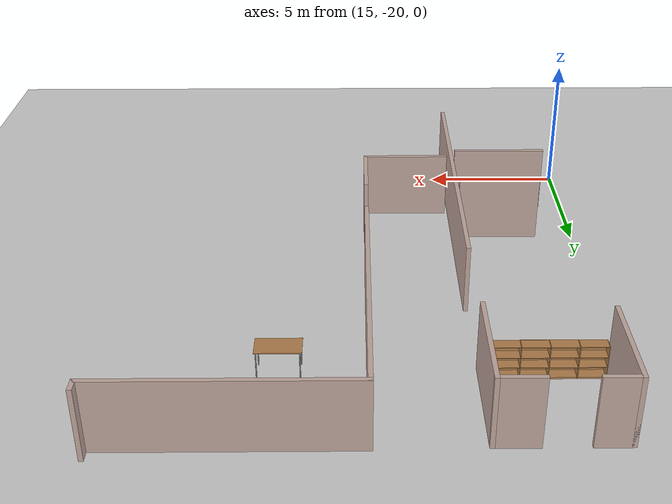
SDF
<sdf version="1.6">
 <world name="default">
  <model name="ground_plane">
   <static>1</static>
   <link name="link">
    <collision name="collision">
     <geometry><plane><normal>0 0 1</normal><size>100 100</size></plane></geometry>
     <surface><friction><ode><mu>100</mu><mu2>50</mu2></ode></friction></surface>
    </collision>
    <visual name="visual">
     <cast_shadows>0</cast_shadows>
     <geometry><plane><normal>0 0 1</normal><size>100 100</size></plane></geometry>
     <material>
      <script><uri>file://media/materials/scripts/gazebo.material</uri><name>Gazebo/Grey</name></script>
     </material>
    </visual>
   </link>
  </model>
  <model name="floor">
   <link name="Wall_114">
    <pose>18.2781 -14.4737 0 0 0 -1.5708</pose>
    <visual name="Wall_114_Visual">
     <pose>0 0 1.25 0 -0 0</pose>
     <geometry><box><size>11.5 0.15 2.5</size></box></geometry>
     <material>
      <script><uri>file://media/materials/scripts/gazebo.material</uri><name>Gazebo/Grey</name></script>
      <ambient>0.760784 0.662745 0.627451 1</ambient>
     </material>
     <meta><layer>0</layer></meta>
    </visual>
    <collision name="Wall_114_Collision">
     <pose>0 0 1.25 0 -0 0</pose>
     <geometry><box><size>11.5 0.15 2.5</size></box></geometry>
     <surface>
      <friction>
       <ode><mu>1</mu><mu2>1</mu2><fdir1>0 0 0</fdir1><slip1>0</slip1><slip2>0</slip2></ode>
       <torsional>
        <coefficient>1</coefficient>
        <patch_radius>0</patch_radius>
        <surface_radius>0</surface_radius>
        <use_patch_radius>1</use_patch_radius>
        <ode><slip>0</slip></ode>
       </torsional>
      </friction>
      <bounce><restitution_coefficient>0</restitution_coefficient><threshold>1e+06</threshold></bounce>
      <contact>
       <collide_without_contact>0</collide_without_contact>
       <collide_without_contact_bitmask>1</collide_without_contact_bitmask>
       <collide_bitmask>1</collide_bitmask>
       <ode>
        <soft_cfm>0</soft_cfm>
        <soft_erp>0.2</soft_erp>
        <kp>1e+13</kp>
        <kd>1</kd>
        <max_vel>0.01</max_vel>
        <min_depth>0</min_depth>
       </ode>
       <bullet>
        <split_impulse>1</split_impulse>
        <split_impulse_penetration_threshold>-0.01</split_impulse_penetration_threshold>
        <soft_cfm>0</soft_cfm>
        <soft_erp>0.2</soft_erp>
        <kp>1e+13</kp>
        <kd>1</kd>
       </bullet>
      </contact>
     </surface>
    </collision>
   </link>
   <link name="Wall_124">
    <pose>16.6031 -13.8987 0 0 -0 0</pose>
    <visual name="Wall_124_Visual">
     <pose>0 0 1.25 0 -0 0</pose>
     <geometry><box><size>3 0.15 2.5</size></box></geometry>
     <material>
      <script><uri>file://media/materials/scripts/gazebo.material</uri><name>Gazebo/Grey</name></script>
      <ambient>0.760784 0.662745 0.627451 1</ambient>
     </material>
     <meta><layer>0</layer></meta>
    </visual>
    <collision name="Wall_124_Collision">
     <pose>0 0 1.25 0 -0 0</pose>
     <geometry><box><size>3 0.15 2.5</size></box></geometry>
     <surface>
      <friction>
       <ode><mu>1</mu><mu2>1</mu2><fdir1>0 0 0</fdir1><slip1>0</slip1><slip2>0</slip2></ode>
       <torsional>
        <coefficient>1</coefficient>
        <patch_radius>0</patch_radius>
        <surface_radius>0</surface_radius>
        <use_patch_radius>1</use_patch_radius>
        <ode><slip>0</slip></ode>
       </torsional>
      </friction>
      <bounce><restitution_coefficient>0</restitution_coefficient><threshold>1e+06</threshold></bounce>
      <contact>
       <collide_without_contact>0</collide_without_contact>
       <collide_without_contact_bitmask>1</collide_without_contact_bitmask>
       <collide_bitmask>1</collide_bitmask>
       <ode>
        <soft_cfm>0</soft_cfm>
        <soft_erp>0.2</soft_erp>
        <kp>1e+13</kp>
        <kd>1</kd>
        <max_vel>0.01</max_vel>
        <min_depth>0</min_depth>
       </ode>
       <bullet>
        <split_impulse>1</split_impulse>
        <split_impulse_penetration_threshold>-0.01</split_impulse_penetration_threshold>
        <soft_cfm>0</soft_cfm>
        <soft_erp>0.2</soft_erp>
        <kp>1e+13</kp>
        <kd>1</kd>
       </bullet>
      </contact>
     </surface>
    </collision>
   </link>
   <link name="Wall_134">
    <pose>16.3472 -16.3406 0 0 -0 0</pose>
    <visual name="Wall_134_Visual">
     <pose>0 0 1.25 0 -0 0</pose>
     <geometry><box><size>3.5 0.15 2.5</size></box></geometry>
     <material>
      <script><uri>file://media/materials/scripts/gazebo.material</uri><name>Gazebo/Grey</name></script>
      <ambient>0.760784 0.662745 0.627451 1</ambient>
     </material>
     <meta><layer>0</layer></meta>
    </visual>
    <collision name="Wall_134_Collision">
     <pose>0 0 1.25 0 -0 0</pose>
     <geometry><box><size>3.5 0.15 2.5</size></box></geometry>
     <surface>
      <friction>
       <ode><mu>1</mu><mu2>1</mu2><fdir1>0 0 0</fdir1><slip1>0</slip1><slip2>0</slip2></ode>
       <torsional>
        <coefficient>1</coefficient>
        <patch_radius>0</patch_radius>
        <surface_radius>0</surface_radius>
        <use_patch_radius>1</use_patch_radius>
        <ode><slip>0</slip></ode>
       </torsional>
      </friction>
      <bounce><restitution_coefficient>0</restitution_coefficient><threshold>1e+06</threshold></bounce>
      <contact>
       <collide_without_contact>0</collide_without_contact>
       <collide_without_contact_bitmask>1</collide_without_contact_bitmask>
       <collide_bitmask>1</collide_bitmask>
       <ode>
        <soft_cfm>0</soft_cfm>
        <soft_erp>0.2</soft_erp>
        <kp>1e+13</kp>
        <kd>1</kd>
        <max_vel>0.01</max_vel>
        <min_depth>0</min_depth>
       </ode>
       <bullet>
        <split_impulse>1</split_impulse>
        <split_impulse_penetration_threshold>-0.01</split_impulse_penetration_threshold>
        <soft_cfm>0</soft_cfm>
        <soft_erp>0.2</soft_erp>
        <kp>1e+13</kp>
        <kd>1</kd>
       </bullet>
      </contact>
     </surface>
    </collision>
   </link>
   <link name="Wall_176">
    <pose>29.7299 -1.60877 0 0 0 -1.5708</pose>
    <visual name="Wall_176_Visual">
     <pose>0 0 1.25 0 -0 0</pose>
     <geometry><box><size>0.5 0.15 2.5</size></box></geometry>
     <material>
      <script><uri>file://media/materials/scripts/gazebo.material</uri><name>Gazebo/Grey</name></script>
      <ambient>0.760784 0.662745 0.627451 1</ambient>
     </material>
     <meta><layer>0</layer></meta>
    </visual>
    <collision name="Wall_176_Collision">
     <pose>0 0 1.25 0 -0 0</pose>
     <geometry><box><size>0.5 0.15 2.5</size></box></geometry>
     <surface>
      <friction>
       <ode><mu>1</mu><mu2>1</mu2><fdir1>0 0 0</fdir1><slip1>0</slip1><slip2>0</slip2></ode>
       <torsional>
        <coefficient>1</coefficient>
        <patch_radius>0</patch_radius>
        <surface_radius>0</surface_radius>
        <use_patch_radius>1</use_patch_radius>
        <ode><slip>0</slip></ode>
       </torsional>
      </friction>
      <bounce><restitution_coefficient>0</restitution_coefficient><threshold>1e+06</threshold></bounce>
      <contact>
       <collide_without_contact>0</collide_without_contact>
       <collide_without_contact_bitmask>1</collide_without_contact_bitmask>
       <collide_bitmask>1</collide_bitmask>
       <ode>
        <soft_cfm>0</soft_cfm>
        <soft_erp>0.2</soft_erp>
        <kp>1e+13</kp>
        <kd>1</kd>
        <max_vel>0.01</max_vel>
        <min_depth>0</min_depth>
       </ode>
       <bullet>
        <split_impulse>1</split_impulse>
        <split_impulse_penetration_threshold>-0.01</split_impulse_penetration_threshold>
        <soft_cfm>0</soft_cfm>
        <soft_erp>0.2</soft_erp>
        <kp>1e+13</kp>
        <kd>1</kd>
       </bullet>
      </contact>
     </surface>
    </collision>
   </link>
   <link name="Wall_177">
    <pose>25.6799 -1.78377 0 0 -0 3.14159</pose>
    <visual name="Wall_177_Visual">
     <pose>0 0 1.25 0 -0 0</pose>
     <geometry><box><size>8.25 0.15 2.5</size></box></geometry>
     <material>
      <script><uri>file://media/materials/scripts/gazebo.material</uri><name>Gazebo/Grey</name></script>
      <ambient>0.760784 0.662745 0.627451 1</ambient>
     </material>
     <meta><layer>0</layer></meta>
    </visual>
    <collision name="Wall_177_Collision">
     <pose>0 0 1.25 0 -0 0</pose>
     <geometry><box><size>8.25 0.15 2.5</size></box></geometry>
     <surface>
      <friction>
       <ode><mu>1</mu><mu2>1</mu2><fdir1>0 0 0</fdir1><slip1>0</slip1><slip2>0</slip2></ode>
       <torsional>
        <coefficient>1</coefficient>
        <patch_radius>0</patch_radius>
        <surface_radius>0</surface_radius>
        <use_patch_radius>1</use_patch_radius>
        <ode><slip>0</slip></ode>
       </torsional>
      </friction>
      <bounce><restitution_coefficient>0</restitution_coefficient><threshold>1e+06</threshold></bounce>
      <contact>
       <collide_without_contact>0</collide_without_contact>
       <collide_without_contact_bitmask>1</collide_without_contact_bitmask>
       <collide_bitmask>1</collide_bitmask>
       <ode>
        <soft_cfm>0</soft_cfm>
        <soft_erp>0.2</soft_erp>
        <kp>1e+13</kp>
        <kd>1</kd>
        <max_vel>0.01</max_vel>
        <min_depth>0</min_depth>
       </ode>
       <bullet>
        <split_impulse>1</split_impulse>
        <split_impulse_penetration_threshold>-0.01</split_impulse_penetration_threshold>
        <soft_cfm>0</soft_cfm>
        <soft_erp>0.2</soft_erp>
        <kp>1e+13</kp>
        <kd>1</kd>
       </bullet>
      </contact>
     </surface>
    </collision>
   </link>
   <link name="Wall_178">
    <pose>21.6299 -6.70876 0 0 0 -1.5708</pose>
    <visual name="Wall_178_Visual">
     <pose>0 0 1.25 0 -0 0</pose>
     <geometry><box><size>10 0.15 2.5</size></box></geometry>
     <material>
      <script><uri>file://media/materials/scripts/gazebo.material</uri><name>Gazebo/Grey</name></script>
      <ambient>0.760784 0.662745 0.627451 1</ambient>
     </material>
     <meta><layer>0</layer></meta>
    </visual>
    <collision name="Wall_178_Collision">
     <pose>0 0 1.25 0 -0 0</pose>
     <geometry><box><size>10 0.15 2.5</size></box></geometry>
     <surface>
      <friction>
       <ode><mu>1</mu><mu2>1</mu2><fdir1>0 0 0</fdir1><slip1>0</slip1><slip2>0</slip2></ode>
       <torsional>
        <coefficient>1</coefficient>
        <patch_radius>0</patch_radius>
        <surface_radius>0</surface_radius>
        <use_patch_radius>1</use_patch_radius>
        <ode><slip>0</slip></ode>
       </torsional>
      </friction>
      <bounce><restitution_coefficient>0</restitution_coefficient><threshold>1e+06</threshold></bounce>
      <contact>
       <collide_without_contact>0</collide_without_contact>
       <collide_without_contact_bitmask>1</collide_without_contact_bitmask>
       <collide_bitmask>1</collide_bitmask>
       <ode>
        <soft_cfm>0</soft_cfm>
        <soft_erp>0.2</soft_erp>
        <kp>1e+13</kp>
        <kd>1</kd>
        <max_vel>0.01</max_vel>
        <min_depth>0</min_depth>
       </ode>
       <bullet>
        <split_impulse>1</split_impulse>
        <split_impulse_penetration_threshold>-0.01</split_impulse_penetration_threshold>
        <soft_cfm>0</soft_cfm>
        <soft_erp>0.2</soft_erp>
        <kp>1e+13</kp>
        <kd>1</kd>
       </bullet>
      </contact>
     </surface>
    </collision>
   </link>
   <link name="Wall_180">
    <pose>21.6299 -14.6588 0 0 0 -1.5708</pose>
    <visual name="Wall_180_Visual">
     <pose>0 0 1.25 0 -0 0</pose>
     <geometry><box><size>2.5 0.15 2.5</size></box></geometry>
     <material>
      <script><uri>file://media/materials/scripts/gazebo.material</uri><name>Gazebo/Grey</name></script>
      <ambient>0.760784 0.662745 0.627451 1</ambient>
     </material>
     <meta><layer>0</layer></meta>
    </visual>
    <collision name="Wall_180_Collision">
     <pose>0 0 1.25 0 -0 0</pose>
     <geometry><box><size>2.5 0.15 2.5</size></box></geometry>
     <surface>
      <friction>
       <ode><mu>1</mu><mu2>1</mu2><fdir1>0 0 0</fdir1><slip1>0</slip1><slip2>0</slip2></ode>
       <torsional>
        <coefficient>1</coefficient>
        <patch_radius>0</patch_radius>
        <surface_radius>0</surface_radius>
        <use_patch_radius>1</use_patch_radius>
        <ode><slip>0</slip></ode>
       </torsional>
      </friction>
      <bounce><restitution_coefficient>0</restitution_coefficient><threshold>1e+06</threshold></bounce>
      <contact>
       <collide_without_contact>0</collide_without_contact>
       <collide_without_contact_bitmask>1</collide_without_contact_bitmask>
       <collide_bitmask>1</collide_bitmask>
       <ode>
        <soft_cfm>0</soft_cfm>
        <soft_erp>0.2</soft_erp>
        <kp>1e+13</kp>
        <kd>1</kd>
        <max_vel>0.01</max_vel>
        <min_depth>0</min_depth>
       </ode>
       <bullet>
        <split_impulse>1</split_impulse>
        <split_impulse_penetration_threshold>-0.01</split_impulse_penetration_threshold>
        <soft_cfm>0</soft_cfm>
        <soft_erp>0.2</soft_erp>
        <kp>1e+13</kp>
        <kd>1</kd>
       </bullet>
      </contact>
     </surface>
    </collision>
   </link>
   <link name="Wall_181">
    <pose>20.0799 -15.8338 0 0 -0 3.14159</pose>
    <visual name="Wall_181_Visual">
     <pose>0 0 1.25 0 -0 0</pose>
     <geometry><box><size>3.25 0.15 2.5</size></box></geometry>
     <material>
      <script><uri>file://media/materials/scripts/gazebo.material</uri><name>Gazebo/Grey</name></script>
      <ambient>0.760784 0.662745 0.627451 1</ambient>
     </material>
     <meta><layer>0</layer></meta>
    </visual>
    <collision name="Wall_181_Collision">
     <pose>0 0 1.25 0 -0 0</pose>
     <geometry><box><size>3.25 0.15 2.5</size></box></geometry>
     <surface>
      <friction>
       <ode><mu>1</mu><mu2>1</mu2><fdir1>0 0 0</fdir1><slip1>0</slip1><slip2>0</slip2></ode>
       <torsional>
        <coefficient>1</coefficient>
        <patch_radius>0</patch_radius>
        <surface_radius>0</surface_radius>
        <use_patch_radius>1</use_patch_radius>
        <ode><slip>0</slip></ode>
       </torsional>
      </friction>
      <bounce><restitution_coefficient>0</restitution_coefficient><threshold>1e+06</threshold></bounce>
      <contact>
       <collide_without_contact>0</collide_without_contact>
       <collide_without_contact_bitmask>1</collide_without_contact_bitmask>
       <collide_bitmask>1</collide_bitmask>
       <ode>
        <soft_cfm>0</soft_cfm>
        <soft_erp>0.2</soft_erp>
        <kp>1e+13</kp>
        <kd>1</kd>
        <max_vel>0.01</max_vel>
        <min_depth>0</min_depth>
       </ode>
       <bullet>
        <split_impulse>1</split_impulse>
        <split_impulse_penetration_threshold>-0.01</split_impulse_penetration_threshold>
        <soft_cfm>0</soft_cfm>
        <soft_erp>0.2</soft_erp>
        <kp>1e+13</kp>
        <kd>1</kd>
       </bullet>
      </contact>
     </surface>
    </collision>
   </link>
   <link name="Wall_85">
    <pose>18.1727 -3.65292 0 0 -0 1.5708</pose>
    <visual name="Wall_85_Visual">
     <pose>0 0 1.25 0 -0 0</pose>
     <geometry><box><size>3.75 0.15 2.5</size></box></geometry>
     <material>
      <script><uri>file://media/materials/scripts/gazebo.material</uri><name>Gazebo/Grey</name></script>
      <ambient>0.760784 0.662745 0.627451 1</ambient>
     </material>
     <meta><layer>0</layer></meta>
    </visual>
    <collision name="Wall_85_Collision">
     <pose>0 0 1.25 0 -0 0</pose>
     <geometry><box><size>3.75 0.15 2.5</size></box></geometry>
     <surface>
      <friction>
       <ode><mu>1</mu><mu2>1</mu2><fdir1>0 0 0</fdir1><slip1>0</slip1><slip2>0</slip2></ode>
       <torsional>
        <coefficient>1</coefficient>
        <patch_radius>0</patch_radius>
        <surface_radius>0</surface_radius>
        <use_patch_radius>1</use_patch_radius>
        <ode><slip>0</slip></ode>
       </torsional>
      </friction>
      <bounce><restitution_coefficient>0</restitution_coefficient><threshold>1e+06</threshold></bounce>
      <contact>
       <collide_without_contact>0</collide_without_contact>
       <collide_without_contact_bitmask>1</collide_without_contact_bitmask>
       <collide_bitmask>1</collide_bitmask>
       <ode>
        <soft_cfm>0</soft_cfm>
        <soft_erp>0.2</soft_erp>
        <kp>1e+13</kp>
        <kd>1</kd>
        <max_vel>0.01</max_vel>
        <min_depth>0</min_depth>
       </ode>
       <bullet>
        <split_impulse>1</split_impulse>
        <split_impulse_penetration_threshold>-0.01</split_impulse_penetration_threshold>
        <soft_cfm>0</soft_cfm>
        <soft_erp>0.2</soft_erp>
        <kp>1e+13</kp>
        <kd>1</kd>
       </bullet>
      </contact>
     </surface>
    </collision>
   </link>
   <link name="Wall_86">
    <pose>17.4977 -1.85292 0 0 -0 3.14159</pose>
    <visual name="Wall_86_Visual">
     <pose>0 0 1.25 0 -0 0</pose>
     <geometry><box><size>1.5 0.15 2.5</size></box></geometry>
     <material>
      <script><uri>file://media/materials/scripts/gazebo.material</uri><name>Gazebo/Grey</name></script>
      <ambient>0.760784 0.662745 0.627451 1</ambient>
     </material>
     <meta><layer>0</layer></meta>
    </visual>
    <collision name="Wall_86_Collision">
     <pose>0 0 1.25 0 -0 0</pose>
     <geometry><box><size>1.5 0.15 2.5</size></box></geometry>
     <surface>
      <friction>
       <ode><mu>1</mu><mu2>1</mu2><fdir1>0 0 0</fdir1><slip1>0</slip1><slip2>0</slip2></ode>
       <torsional>
        <coefficient>1</coefficient>
        <patch_radius>0</patch_radius>
        <surface_radius>0</surface_radius>
        <use_patch_radius>1</use_patch_radius>
        <ode><slip>0</slip></ode>
       </torsional>
      </friction>
      <bounce><restitution_coefficient>0</restitution_coefficient><threshold>1e+06</threshold></bounce>
      <contact>
       <collide_without_contact>0</collide_without_contact>
       <collide_without_contact_bitmask>1</collide_without_contact_bitmask>
       <collide_bitmask>1</collide_bitmask>
       <ode>
        <soft_cfm>0</soft_cfm>
        <soft_erp>0.2</soft_erp>
        <kp>1e+13</kp>
        <kd>1</kd>
        <max_vel>0.01</max_vel>
        <min_depth>0</min_depth>
       </ode>
       <bullet>
        <split_impulse>1</split_impulse>
        <split_impulse_penetration_threshold>-0.01</split_impulse_penetration_threshold>
        <soft_cfm>0</soft_cfm>
        <soft_erp>0.2</soft_erp>
        <kp>1e+13</kp>
        <kd>1</kd>
       </bullet>
      </contact>
     </surface>
    </collision>
   </link>
   <link name="Wall_88">
    <pose>14.6727 -1.85292 0 0 -0 3.14159</pose>
    <visual name="Wall_88_Visual">
     <pose>0 0 1.25 0 -0 0</pose>
     <geometry><box><size>1.25 0.15 2.5</size></box></geometry>
     <material>
      <script><uri>file://media/materials/scripts/gazebo.material</uri><name>Gazebo/Grey</name></script>
      <ambient>0.760784 0.662745 0.627451 1</ambient>
     </material>
     <meta><layer>0</layer></meta>
    </visual>
    <collision name="Wall_88_Collision">
     <pose>0 0 1.25 0 -0 0</pose>
     <geometry><box><size>1.25 0.15 2.5</size></box></geometry>
     <surface>
      <friction>
       <ode><mu>1</mu><mu2>1</mu2><fdir1>0 0 0</fdir1><slip1>0</slip1><slip2>0</slip2></ode>
       <torsional>
        <coefficient>1</coefficient>
        <patch_radius>0</patch_radius>
        <surface_radius>0</surface_radius>
        <use_patch_radius>1</use_patch_radius>
        <ode><slip>0</slip></ode>
       </torsional>
      </friction>
      <bounce><restitution_coefficient>0</restitution_coefficient><threshold>1e+06</threshold></bounce>
      <contact>
       <collide_without_contact>0</collide_without_contact>
       <collide_without_contact_bitmask>1</collide_without_contact_bitmask>
       <collide_bitmask>1</collide_bitmask>
       <ode>
        <soft_cfm>0</soft_cfm>
        <soft_erp>0.2</soft_erp>
        <kp>1e+13</kp>
        <kd>1</kd>
        <max_vel>0.01</max_vel>
        <min_depth>0</min_depth>
       </ode>
       <bullet>
        <split_impulse>1</split_impulse>
        <split_impulse_penetration_threshold>-0.01</split_impulse_penetration_threshold>
        <soft_cfm>0</soft_cfm>
        <soft_erp>0.2</soft_erp>
        <kp>1e+13</kp>
        <kd>1</kd>
       </bullet>
      </contact>
     </surface>
    </collision>
   </link>
   <link name="Wall_95">
    <pose>14.1227 -3.52792 0 0 0 -1.5708</pose>
    <visual name="Wall_95_Visual">
     <pose>0 0 1.25 0 -0 0</pose>
     <geometry><box><size>3.5 0.15 2.5</size></box></geometry>
     <material>
      <script><uri>file://media/materials/scripts/gazebo.material</uri><name>Gazebo/Grey</name></script>
      <ambient>0.760784 0.662745 0.627451 1</ambient>
     </material>
     <meta><layer>0</layer></meta>
    </visual>
    <collision name="Wall_95_Collision">
     <pose>0 0 1.25 0 -0 0</pose>
     <geometry><box><size>3.5 0.15 2.5</size></box></geometry>
     <surface>
      <friction>
       <ode><mu>1</mu><mu2>1</mu2><fdir1>0 0 0</fdir1><slip1>0</slip1><slip2>0</slip2></ode>
       <torsional>
        <coefficient>1</coefficient>
        <patch_radius>0</patch_radius>
        <surface_radius>0</surface_radius>
        <use_patch_radius>1</use_patch_radius>
        <ode><slip>0</slip></ode>
       </torsional>
      </friction>
      <bounce><restitution_coefficient>0</restitution_coefficient><threshold>1e+06</threshold></bounce>
      <contact>
       <collide_without_contact>0</collide_without_contact>
       <collide_without_contact_bitmask>1</collide_without_contact_bitmask>
       <collide_bitmask>1</collide_bitmask>
       <ode>
        <soft_cfm>0</soft_cfm>
        <soft_erp>0.2</soft_erp>
        <kp>1e+13</kp>
        <kd>1</kd>
        <max_vel>0.01</max_vel>
        <min_depth>0</min_depth>
       </ode>
       <bullet>
        <split_impulse>1</split_impulse>
        <split_impulse_penetration_threshold>-0.01</split_impulse_penetration_threshold>
        <soft_cfm>0</soft_cfm>
        <soft_erp>0.2</soft_erp>
        <kp>1e+13</kp>
        <kd>1</kd>
       </bullet>
      </contact>
     </surface>
    </collision>
   </link>
   <static>1</static>
   <pose>1.26361 -1.27025 0 0 -0 0</pose>
  </model>
  <model name="Bookshelf-4_clone_15_clone_clone_1">
   <model name="bookshelf">
    <static>1</static>
    <link name="link">
     <inertial><mass>1</mass></inertial>
     <collision name="back">
      <pose>0 0.005 0.6 0 -0 0</pose>
      <geometry><box><size>0.9 0.01 1.2</size></box></geometry>
     </collision>
     <visual name="visual1">
      <pose>0 0.005 0.6 0 -0 0</pose>
      <geometry><box><size>0.9 0.01 1.2</size></box></geometry>
      <material>
       <script><uri>file://media/materials/scripts/gazebo.material</uri><name>Gazebo/Wood</name></script>
      </material>
     </visual>
     <collision name="left_side">
      <pose>0.45 -0.195 0.6 0 -0 0</pose>
      <geometry><box><size>0.02 0.4 1.2</size></box></geometry>
     </collision>
     <visual name="visual2">
      <pose>0.45 -0.195 0.6 0 -0 0</pose>
      <geometry><box><size>0.02 0.4 1.2</size></box></geometry>
      <material>
       <script><uri>file://media/materials/scripts/gazebo.material</uri><name>Gazebo/Wood</name></script>
      </material>
     </visual>
     <collision name="right_side">
      <pose>-0.45 -0.195 0.6 0 -0 0</pose>
      <geometry><box><size>0.02 0.4 1.2</size></box></geometry>
     </collision>
     <visual name="visual3">
      <pose>-0.45 -0.195 0.6 0 -0 0</pose>
      <geometry><box><size>0.02 0.4 1.2</size></box></geometry>
      <material>
       <script><uri>file://media/materials/scripts/gazebo.material</uri><name>Gazebo/Wood</name></script>
      </material>
     </visual>
     <collision name="bottom">
      <pose>0 -0.195 0.03 0 -0 0</pose>
      <geometry><box><size>0.88 0.4 0.06</size></box></geometry>
     </collision>
     <visual name="visual4">
      <pose>0 -0.195 0.03 0 -0 0</pose>
      <geometry><box><size>0.88 0.4 0.06</size></box></geometry>
      <material>
       <script><uri>file://media/materials/scripts/gazebo.material</uri><name>Gazebo/Wood</name></script>
      </material>
     </visual>
     <collision name="top">
      <pose>0 -0.195 1.19 0 -0 0</pose>
      <geometry><box><size>0.88 0.4 0.02</size></box></geometry>
     </collision>
     <visual name="visual5">
      <pose>0 -0.195 1.19 0 -0 0</pose>
      <geometry><box><size>0.88 0.4 0.02</size></box></geometry>
      <material>
       <script><uri>file://media/materials/scripts/gazebo.material</uri><name>Gazebo/Wood</name></script>
      </material>
     </visual>
     <collision name="low_shelf">
      <pose>0 -0.195 0.43 0 -0 0</pose>
      <geometry><box><size>0.88 0.4 0.02</size></box></geometry>
     </collision>
     <visual name="visual6">
      <pose>0 -0.195 0.43 0 -0 0</pose>
      <geometry><box><size>0.88 0.4 0.02</size></box></geometry>
      <material>
       <script><uri>file://media/materials/scripts/gazebo.material</uri><name>Gazebo/Wood</name></script>
      </material>
     </visual>
     <collision name="high_shelf">
      <pose>0 -0.195 0.8 0 -0 0</pose>
      <geometry><box><size>0.88 0.4 0.02</size></box></geometry>
     </collision>
     <visual name="visual7">
      <pose>0 -0.195 0.8 0 -0 0</pose>
      <geometry><box><size>0.88 0.4 0.02</size></box></geometry>
      <material>
       <script><uri>file://media/materials/scripts/gazebo.material</uri><name>Gazebo/Wood</name></script>
      </material>
     </visual>
    </link>
    <pose>-1.35671 -0.002097 0 0 -0 0</pose>
   </model>
   <model name="bookshelf_0">
    <static>1</static>
    <link name="link">
     <inertial><mass>1</mass></inertial>
     <collision name="back">
      <pose>0 0.005 0.6 0 -0 0</pose>
      <geometry><box><size>0.9 0.01 1.2</size></box></geometry>
     </collision>
     <visual name="visual1">
      <pose>0 0.005 0.6 0 -0 0</pose>
      <geometry><box><size>0.9 0.01 1.2</size></box></geometry>
      <material>
       <script><uri>file://media/materials/scripts/gazebo.material</uri><name>Gazebo/Wood</name></script>
      </material>
     </visual>
     <collision name="left_side">
      <pose>0.45 -0.195 0.6 0 -0 0</pose>
      <geometry><box><size>0.02 0.4 1.2</size></box></geometry>
     </collision>
     <visual name="visual2">
      <pose>0.45 -0.195 0.6 0 -0 0</pose>
      <geometry><box><size>0.02 0.4 1.2</size></box></geometry>
      <material>
       <script><uri>file://media/materials/scripts/gazebo.material</uri><name>Gazebo/Wood</name></script>
      </material>
     </visual>
     <collision name="right_side">
      <pose>-0.45 -0.195 0.6 0 -0 0</pose>
      <geometry><box><size>0.02 0.4 1.2</size></box></geometry>
     </collision>
     <visual name="visual3">
      <pose>-0.45 -0.195 0.6 0 -0 0</pose>
      <geometry><box><size>0.02 0.4 1.2</size></box></geometry>
      <material>
       <script><uri>file://media/materials/scripts/gazebo.material</uri><name>Gazebo/Wood</name></script>
      </material>
     </visual>
     <collision name="bottom">
      <pose>0 -0.195 0.03 0 -0 0</pose>
      <geometry><box><size>0.88 0.4 0.06</size></box></geometry>
     </collision>
     <visual name="visual4">
      <pose>0 -0.195 0.03 0 -0 0</pose>
      <geometry><box><size>0.88 0.4 0.06</size></box></geometry>
      <material>
       <script><uri>file://media/materials/scripts/gazebo.material</uri><name>Gazebo/Wood</name></script>
      </material>
     </visual>
     <collision name="top">
      <pose>0 -0.195 1.19 0 -0 0</pose>
      <geometry><box><size>0.88 0.4 0.02</size></box></geometry>
     </collision>
     <visual name="visual5">
      <pose>0 -0.195 1.19 0 -0 0</pose>
      <geometry><box><size>0.88 0.4 0.02</size></box></geometry>
      <material>
       <script><uri>file://media/materials/scripts/gazebo.material</uri><name>Gazebo/Wood</name></script>
      </material>
     </visual>
     <collision name="low_shelf">
      <pose>0 -0.195 0.43 0 -0 0</pose>
      <geometry><box><size>0.88 0.4 0.02</size></box></geometry>
     </collision>
     <visual name="visual6">
      <pose>0 -0.195 0.43 0 -0 0</pose>
      <geometry><box><size>0.88 0.4 0.02</size></box></geometry>
      <material>
       <script><uri>file://media/materials/scripts/gazebo.material</uri><name>Gazebo/Wood</name></script>
      </material>
     </visual>
     <collision name="high_shelf">
      <pose>0 -0.195 0.8 0 -0 0</pose>
      <geometry><box><size>0.88 0.4 0.02</size></box></geometry>
     </collision>
     <visual name="visual7">
      <pose>0 -0.195 0.8 0 -0 0</pose>
      <geometry><box><size>0.88 0.4 0.02</size></box></geometry>
      <material>
       <script><uri>file://media/materials/scripts/gazebo.material</uri><name>Gazebo/Wood</name></script>
      </material>
     </visual>
    </link>
    <pose>-0.452974 0.001386 0 0 -0 0</pose>
   </model>
   <model name="bookshelf_1">
    <static>1</static>
    <link name="link">
     <inertial><mass>1</mass></inertial>
     <collision name="back">
      <pose>0 0.005 0.6 0 -0 0</pose>
      <geometry><box><size>0.9 0.01 1.2</size></box></geometry>
     </collision>
     <visual name="visual1">
      <pose>0 0.005 0.6 0 -0 0</pose>
      <geometry><box><size>0.9 0.01 1.2</size></box></geometry>
      <material>
       <script><uri>file://media/materials/scripts/gazebo.material</uri><name>Gazebo/Wood</name></script>
      </material>
     </visual>
     <collision name="left_side">
      <pose>0.45 -0.195 0.6 0 -0 0</pose>
      <geometry><box><size>0.02 0.4 1.2</size></box></geometry>
     </collision>
     <visual name="visual2">
      <pose>0.45 -0.195 0.6 0 -0 0</pose>
      <geometry><box><size>0.02 0.4 1.2</size></box></geometry>
      <material>
       <script><uri>file://media/materials/scripts/gazebo.material</uri><name>Gazebo/Wood</name></script>
      </material>
     </visual>
     <collision name="right_side">
      <pose>-0.45 -0.195 0.6 0 -0 0</pose>
      <geometry><box><size>0.02 0.4 1.2</size></box></geometry>
     </collision>
     <visual name="visual3">
      <pose>-0.45 -0.195 0.6 0 -0 0</pose>
      <geometry><box><size>0.02 0.4 1.2</size></box></geometry>
      <material>
       <script><uri>file://media/materials/scripts/gazebo.material</uri><name>Gazebo/Wood</name></script>
      </material>
     </visual>
     <collision name="bottom">
      <pose>0 -0.195 0.03 0 -0 0</pose>
      <geometry><box><size>0.88 0.4 0.06</size></box></geometry>
     </collision>
     <visual name="visual4">
      <pose>0 -0.195 0.03 0 -0 0</pose>
      <geometry><box><size>0.88 0.4 0.06</size></box></geometry>
      <material>
       <script><uri>file://media/materials/scripts/gazebo.material</uri><name>Gazebo/Wood</name></script>
      </material>
     </visual>
     <collision name="top">
      <pose>0 -0.195 1.19 0 -0 0</pose>
      <geometry><box><size>0.88 0.4 0.02</size></box></geometry>
     </collision>
     <visual name="visual5">
      <pose>0 -0.195 1.19 0 -0 0</pose>
      <geometry><box><size>0.88 0.4 0.02</size></box></geometry>
      <material>
       <script><uri>file://media/materials/scripts/gazebo.material</uri><name>Gazebo/Wood</name></script>
      </material>
     </visual>
     <collision name="low_shelf">
      <pose>0 -0.195 0.43 0 -0 0</pose>
      <geometry><box><size>0.88 0.4 0.02</size></box></geometry>
     </collision>
     <visual name="visual6">
      <pose>0 -0.195 0.43 0 -0 0</pose>
      <geometry><box><size>0.88 0.4 0.02</size></box></geometry>
      <material>
       <script><uri>file://media/materials/scripts/gazebo.material</uri><name>Gazebo/Wood</name></script>
      </material>
     </visual>
     <collision name="high_shelf">
      <pose>0 -0.195 0.8 0 -0 0</pose>
      <geometry><box><size>0.88 0.4 0.02</size></box></geometry>
     </collision>
     <visual name="visual7">
      <pose>0 -0.195 0.8 0 -0 0</pose>
      <geometry><box><size>0.88 0.4 0.02</size></box></geometry>
      <material>
       <script><uri>file://media/materials/scripts/gazebo.material</uri><name>Gazebo/Wood</name></script>
      </material>
     </visual>
    </link>
    <pose>0.450456 0.000733 0 0 -0 0</pose>
   </model>
   <model name="bookshelf_2">
    <static>1</static>
    <link name="link">
     <inertial><mass>1</mass></inertial>
     <collision name="back">
      <pose>0 0.005 0.6 0 -0 0</pose>
      <geometry><box><size>0.9 0.01 1.2</size></box></geometry>
     </collision>
     <visual name="visual1">
      <pose>0 0.005 0.6 0 -0 0</pose>
      <geometry><box><size>0.9 0.01 1.2</size></box></geometry>
      <material>
       <script><uri>file://media/materials/scripts/gazebo.material</uri><name>Gazebo/Wood</name></script>
      </material>
     </visual>
     <collision name="left_side">
      <pose>0.45 -0.195 0.6 0 -0 0</pose>
      <geometry><box><size>0.02 0.4 1.2</size></box></geometry>
     </collision>
     <visual name="visual2">
      <pose>0.45 -0.195 0.6 0 -0 0</pose>
      <geometry><box><size>0.02 0.4 1.2</size></box></geometry>
      <material>
       <script><uri>file://media/materials/scripts/gazebo.material</uri><name>Gazebo/Wood</name></script>
      </material>
     </visual>
     <collision name="right_side">
      <pose>-0.45 -0.195 0.6 0 -0 0</pose>
      <geometry><box><size>0.02 0.4 1.2</size></box></geometry>
     </collision>
     <visual name="visual3">
      <pose>-0.45 -0.195 0.6 0 -0 0</pose>
      <geometry><box><size>0.02 0.4 1.2</size></box></geometry>
      <material>
       <script><uri>file://media/materials/scripts/gazebo.material</uri><name>Gazebo/Wood</name></script>
      </material>
     </visual>
     <collision name="bottom">
      <pose>0 -0.195 0.03 0 -0 0</pose>
      <geometry><box><size>0.88 0.4 0.06</size></box></geometry>
     </collision>
     <visual name="visual4">
      <pose>0 -0.195 0.03 0 -0 0</pose>
      <geometry><box><size>0.88 0.4 0.06</size></box></geometry>
      <material>
       <script><uri>file://media/materials/scripts/gazebo.material</uri><name>Gazebo/Wood</name></script>
      </material>
     </visual>
     <collision name="top">
      <pose>0 -0.195 1.19 0 -0 0</pose>
      <geometry><box><size>0.88 0.4 0.02</size></box></geometry>
     </collision>
     <visual name="visual5">
      <pose>0 -0.195 1.19 0 -0 0</pose>
      <geometry><box><size>0.88 0.4 0.02</size></box></geometry>
      <material>
       <script><uri>file://media/materials/scripts/gazebo.material</uri><name>Gazebo/Wood</name></script>
      </material>
     </visual>
     <collision name="low_shelf">
      <pose>0 -0.195 0.43 0 -0 0</pose>
      <geometry><box><size>0.88 0.4 0.02</size></box></geometry>
     </collision>
     <visual name="visual6">
      <pose>0 -0.195 0.43 0 -0 0</pose>
      <geometry><box><size>0.88 0.4 0.02</size></box></geometry>
      <material>
       <script><uri>file://media/materials/scripts/gazebo.material</uri><name>Gazebo/Wood</name></script>
      </material>
     </visual>
     <collision name="high_shelf">
      <pose>0 -0.195 0.8 0 -0 0</pose>
      <geometry><box><size>0.88 0.4 0.02</size></box></geometry>
     </collision>
     <visual name="visual7">
      <pose>0 -0.195 0.8 0 -0 0</pose>
      <geometry><box><size>0.88 0.4 0.02</size></box></geometry>
      <material>
       <script><uri>file://media/materials/scripts/gazebo.material</uri><name>Gazebo/Wood</name></script>
      </material>
     </visual>
    </link>
    <pose>1.35922 -1.7e-05 0 0 -0 0</pose>
   </model>
   <static>0</static>
   <pose>17.3252 -6.6168 0 0 -0 3.14159</pose>
  </model>
  <model name="Bookshelf-4_clone_15_clone_1">
   <model name="bookshelf">
    <static>1</static>
    <link name="link">
     <inertial><mass>1</mass></inertial>
     <collision name="back">
      <pose>0 0.005 0.6 0 -0 0</pose>
      <geometry><box><size>0.9 0.01 1.2</size></box></geometry>
     </collision>
     <visual name="visual1">
      <pose>0 0.005 0.6 0 -0 0</pose>
      <geometry><box><size>0.9 0.01 1.2</size></box></geometry>
      <material>
       <script><uri>file://media/materials/scripts/gazebo.material</uri><name>Gazebo/Wood</name></script>
      </material>
     </visual>
     <collision name="left_side">
      <pose>0.45 -0.195 0.6 0 -0 0</pose>
      <geometry><box><size>0.02 0.4 1.2</size></box></geometry>
     </collision>
     <visual name="visual2">
      <pose>0.45 -0.195 0.6 0 -0 0</pose>
      <geometry><box><size>0.02 0.4 1.2</size></box></geometry>
      <material>
       <script><uri>file://media/materials/scripts/gazebo.material</uri><name>Gazebo/Wood</name></script>
      </material>
     </visual>
     <collision name="right_side">
      <pose>-0.45 -0.195 0.6 0 -0 0</pose>
      <geometry><box><size>0.02 0.4 1.2</size></box></geometry>
     </collision>
     <visual name="visual3">
      <pose>-0.45 -0.195 0.6 0 -0 0</pose>
      <geometry><box><size>0.02 0.4 1.2</size></box></geometry>
      <material>
       <script><uri>file://media/materials/scripts/gazebo.material</uri><name>Gazebo/Wood</name></script>
      </material>
     </visual>
     <collision name="bottom">
      <pose>0 -0.195 0.03 0 -0 0</pose>
      <geometry><box><size>0.88 0.4 0.06</size></box></geometry>
     </collision>
     <visual name="visual4">
      <pose>0 -0.195 0.03 0 -0 0</pose>
      <geometry><box><size>0.88 0.4 0.06</size></box></geometry>
      <material>
       <script><uri>file://media/materials/scripts/gazebo.material</uri><name>Gazebo/Wood</name></script>
      </material>
     </visual>
     <collision name="top">
      <pose>0 -0.195 1.19 0 -0 0</pose>
      <geometry><box><size>0.88 0.4 0.02</size></box></geometry>
     </collision>
     <visual name="visual5">
      <pose>0 -0.195 1.19 0 -0 0</pose>
      <geometry><box><size>0.88 0.4 0.02</size></box></geometry>
      <material>
       <script><uri>file://media/materials/scripts/gazebo.material</uri><name>Gazebo/Wood</name></script>
      </material>
     </visual>
     <collision name="low_shelf">
      <pose>0 -0.195 0.43 0 -0 0</pose>
      <geometry><box><size>0.88 0.4 0.02</size></box></geometry>
     </collision>
     <visual name="visual6">
      <pose>0 -0.195 0.43 0 -0 0</pose>
      <geometry><box><size>0.88 0.4 0.02</size></box></geometry>
      <material>
       <script><uri>file://media/materials/scripts/gazebo.material</uri><name>Gazebo/Wood</name></script>
      </material>
     </visual>
     <collision name="high_shelf">
      <pose>0 -0.195 0.8 0 -0 0</pose>
      <geometry><box><size>0.88 0.4 0.02</size></box></geometry>
     </collision>
     <visual name="visual7">
      <pose>0 -0.195 0.8 0 -0 0</pose>
      <geometry><box><size>0.88 0.4 0.02</size></box></geometry>
      <material>
       <script><uri>file://media/materials/scripts/gazebo.material</uri><name>Gazebo/Wood</name></script>
      </material>
     </visual>
    </link>
    <pose>-1.35671 -0.002097 0 0 -0 0</pose>
   </model>
   <model name="bookshelf_0">
    <static>1</static>
    <link name="link">
     <inertial><mass>1</mass></inertial>
     <collision name="back">
      <pose>0 0.005 0.6 0 -0 0</pose>
      <geometry><box><size>0.9 0.01 1.2</size></box></geometry>
     </collision>
     <visual name="visual1">
      <pose>0 0.005 0.6 0 -0 0</pose>
      <geometry><box><size>0.9 0.01 1.2</size></box></geometry>
      <material>
       <script><uri>file://media/materials/scripts/gazebo.material</uri><name>Gazebo/Wood</name></script>
      </material>
     </visual>
     <collision name="left_side">
      <pose>0.45 -0.195 0.6 0 -0 0</pose>
      <geometry><box><size>0.02 0.4 1.2</size></box></geometry>
     </collision>
     <visual name="visual2">
      <pose>0.45 -0.195 0.6 0 -0 0</pose>
      <geometry><box><size>0.02 0.4 1.2</size></box></geometry>
      <material>
       <script><uri>file://media/materials/scripts/gazebo.material</uri><name>Gazebo/Wood</name></script>
      </material>
     </visual>
     <collision name="right_side">
      <pose>-0.45 -0.195 0.6 0 -0 0</pose>
      <geometry><box><size>0.02 0.4 1.2</size></box></geometry>
     </collision>
     <visual name="visual3">
      <pose>-0.45 -0.195 0.6 0 -0 0</pose>
      <geometry><box><size>0.02 0.4 1.2</size></box></geometry>
      <material>
       <script><uri>file://media/materials/scripts/gazebo.material</uri><name>Gazebo/Wood</name></script>
      </material>
     </visual>
     <collision name="bottom">
      <pose>0 -0.195 0.03 0 -0 0</pose>
      <geometry><box><size>0.88 0.4 0.06</size></box></geometry>
     </collision>
     <visual name="visual4">
      <pose>0 -0.195 0.03 0 -0 0</pose>
      <geometry><box><size>0.88 0.4 0.06</size></box></geometry>
      <material>
       <script><uri>file://media/materials/scripts/gazebo.material</uri><name>Gazebo/Wood</name></script>
      </material>
     </visual>
     <collision name="top">
      <pose>0 -0.195 1.19 0 -0 0</pose>
      <geometry><box><size>0.88 0.4 0.02</size></box></geometry>
     </collision>
     <visual name="visual5">
      <pose>0 -0.195 1.19 0 -0 0</pose>
      <geometry><box><size>0.88 0.4 0.02</size></box></geometry>
      <material>
       <script><uri>file://media/materials/scripts/gazebo.material</uri><name>Gazebo/Wood</name></script>
      </material>
     </visual>
     <collision name="low_shelf">
      <pose>0 -0.195 0.43 0 -0 0</pose>
      <geometry><box><size>0.88 0.4 0.02</size></box></geometry>
     </collision>
     <visual name="visual6">
      <pose>0 -0.195 0.43 0 -0 0</pose>
      <geometry><box><size>0.88 0.4 0.02</size></box></geometry>
      <material>
       <script><uri>file://media/materials/scripts/gazebo.material</uri><name>Gazebo/Wood</name></script>
      </material>
     </visual>
     <collision name="high_shelf">
      <pose>0 -0.195 0.8 0 -0 0</pose>
      <geometry><box><size>0.88 0.4 0.02</size></box></geometry>
     </collision>
     <visual name="visual7">
      <pose>0 -0.195 0.8 0 -0 0</pose>
      <geometry><box><size>0.88 0.4 0.02</size></box></geometry>
      <material>
       <script><uri>file://media/materials/scripts/gazebo.material</uri><name>Gazebo/Wood</name></script>
      </material>
     </visual>
    </link>
    <pose>-0.452974 0.001386 0 0 -0 0</pose>
   </model>
   <model name="bookshelf_1">
    <static>1</static>
    <link name="link">
     <inertial><mass>1</mass></inertial>
     <collision name="back">
      <pose>0 0.005 0.6 0 -0 0</pose>
      <geometry><box><size>0.9 0.01 1.2</size></box></geometry>
     </collision>
     <visual name="visual1">
      <pose>0 0.005 0.6 0 -0 0</pose>
      <geometry><box><size>0.9 0.01 1.2</size></box></geometry>
      <material>
       <script><uri>file://media/materials/scripts/gazebo.material</uri><name>Gazebo/Wood</name></script>
      </material>
     </visual>
     <collision name="left_side">
      <pose>0.45 -0.195 0.6 0 -0 0</pose>
      <geometry><box><size>0.02 0.4 1.2</size></box></geometry>
     </collision>
     <visual name="visual2">
      <pose>0.45 -0.195 0.6 0 -0 0</pose>
      <geometry><box><size>0.02 0.4 1.2</size></box></geometry>
      <material>
       <script><uri>file://media/materials/scripts/gazebo.material</uri><name>Gazebo/Wood</name></script>
      </material>
     </visual>
     <collision name="right_side">
      <pose>-0.45 -0.195 0.6 0 -0 0</pose>
      <geometry><box><size>0.02 0.4 1.2</size></box></geometry>
     </collision>
     <visual name="visual3">
      <pose>-0.45 -0.195 0.6 0 -0 0</pose>
      <geometry><box><size>0.02 0.4 1.2</size></box></geometry>
      <material>
       <script><uri>file://media/materials/scripts/gazebo.material</uri><name>Gazebo/Wood</name></script>
      </material>
     </visual>
     <collision name="bottom">
      <pose>0 -0.195 0.03 0 -0 0</pose>
      <geometry><box><size>0.88 0.4 0.06</size></box></geometry>
     </collision>
     <visual name="visual4">
      <pose>0 -0.195 0.03 0 -0 0</pose>
      <geometry><box><size>0.88 0.4 0.06</size></box></geometry>
      <material>
       <script><uri>file://media/materials/scripts/gazebo.material</uri><name>Gazebo/Wood</name></script>
      </material>
     </visual>
     <collision name="top">
      <pose>0 -0.195 1.19 0 -0 0</pose>
      <geometry><box><size>0.88 0.4 0.02</size></box></geometry>
     </collision>
     <visual name="visual5">
      <pose>0 -0.195 1.19 0 -0 0</pose>
      <geometry><box><size>0.88 0.4 0.02</size></box></geometry>
      <material>
       <script><uri>file://media/materials/scripts/gazebo.material</uri><name>Gazebo/Wood</name></script>
      </material>
     </visual>
     <collision name="low_shelf">
      <pose>0 -0.195 0.43 0 -0 0</pose>
      <geometry><box><size>0.88 0.4 0.02</size></box></geometry>
     </collision>
     <visual name="visual6">
      <pose>0 -0.195 0.43 0 -0 0</pose>
      <geometry><box><size>0.88 0.4 0.02</size></box></geometry>
      <material>
       <script><uri>file://media/materials/scripts/gazebo.material</uri><name>Gazebo/Wood</name></script>
      </material>
     </visual>
     <collision name="high_shelf">
      <pose>0 -0.195 0.8 0 -0 0</pose>
      <geometry><box><size>0.88 0.4 0.02</size></box></geometry>
     </collision>
     <visual name="visual7">
      <pose>0 -0.195 0.8 0 -0 0</pose>
      <geometry><box><size>0.88 0.4 0.02</size></box></geometry>
      <material>
       <script><uri>file://media/materials/scripts/gazebo.material</uri><name>Gazebo/Wood</name></script>
      </material>
     </visual>
    </link>
    <pose>0.450456 0.000733 0 0 -0 0</pose>
   </model>
   <model name="bookshelf_2">
    <static>1</static>
    <link name="link">
     <inertial><mass>1</mass></inertial>
     <collision name="back">
      <pose>0 0.005 0.6 0 -0 0</pose>
      <geometry><box><size>0.9 0.01 1.2</size></box></geometry>
     </collision>
     <visual name="visual1">
      <pose>0 0.005 0.6 0 -0 0</pose>
      <geometry><box><size>0.9 0.01 1.2</size></box></geometry>
      <material>
       <script><uri>file://media/materials/scripts/gazebo.material</uri><name>Gazebo/Wood</name></script>
      </material>
     </visual>
     <collision name="left_side">
      <pose>0.45 -0.195 0.6 0 -0 0</pose>
      <geometry><box><size>0.02 0.4 1.2</size></box></geometry>
     </collision>
     <visual name="visual2">
      <pose>0.45 -0.195 0.6 0 -0 0</pose>
      <geometry><box><size>0.02 0.4 1.2</size></box></geometry>
      <material>
       <script><uri>file://media/materials/scripts/gazebo.material</uri><name>Gazebo/Wood</name></script>
      </material>
     </visual>
     <collision name="right_side">
      <pose>-0.45 -0.195 0.6 0 -0 0</pose>
      <geometry><box><size>0.02 0.4 1.2</size></box></geometry>
     </collision>
     <visual name="visual3">
      <pose>-0.45 -0.195 0.6 0 -0 0</pose>
      <geometry><box><size>0.02 0.4 1.2</size></box></geometry>
      <material>
       <script><uri>file://media/materials/scripts/gazebo.material</uri><name>Gazebo/Wood</name></script>
      </material>
     </visual>
     <collision name="bottom">
      <pose>0 -0.195 0.03 0 -0 0</pose>
      <geometry><box><size>0.88 0.4 0.06</size></box></geometry>
     </collision>
     <visual name="visual4">
      <pose>0 -0.195 0.03 0 -0 0</pose>
      <geometry><box><size>0.88 0.4 0.06</size></box></geometry>
      <material>
       <script><uri>file://media/materials/scripts/gazebo.material</uri><name>Gazebo/Wood</name></script>
      </material>
     </visual>
     <collision name="top">
      <pose>0 -0.195 1.19 0 -0 0</pose>
      <geometry><box><size>0.88 0.4 0.02</size></box></geometry>
     </collision>
     <visual name="visual5">
      <pose>0 -0.195 1.19 0 -0 0</pose>
      <geometry><box><size>0.88 0.4 0.02</size></box></geometry>
      <material>
       <script><uri>file://media/materials/scripts/gazebo.material</uri><name>Gazebo/Wood</name></script>
      </material>
     </visual>
     <collision name="low_shelf">
      <pose>0 -0.195 0.43 0 -0 0</pose>
      <geometry><box><size>0.88 0.4 0.02</size></box></geometry>
     </collision>
     <visual name="visual6">
      <pose>0 -0.195 0.43 0 -0 0</pose>
      <geometry><box><size>0.88 0.4 0.02</size></box></geometry>
      <material>
       <script><uri>file://media/materials/scripts/gazebo.material</uri><name>Gazebo/Wood</name></script>
      </material>
     </visual>
     <collision name="high_shelf">
      <pose>0 -0.195 0.8 0 -0 0</pose>
      <geometry><box><size>0.88 0.4 0.02</size></box></geometry>
     </collision>
     <visual name="visual7">
      <pose>0 -0.195 0.8 0 -0 0</pose>
      <geometry><box><size>0.88 0.4 0.02</size></box></geometry>
      <material>
       <script><uri>file://media/materials/scripts/gazebo.material</uri><name>Gazebo/Wood</name></script>
      </material>
     </visual>
    </link>
    <pose>1.35922 -1.7e-05 0 0 -0 0</pose>
   </model>
   <static>0</static>
   <pose>25.095 -3.14147 0.041819 0 -0 0</pose>
  </model>
  <model name="table_clone_1">
   <static>1</static>
   <link name="link">
    <collision name="surface">
     <pose>0 0 1 0 -0 0</pose>
     <geometry><box><size>1.5 0.8 0.03</size></box></geometry>
     <surface><friction><ode><mu>0.6</mu><mu2>0.6</mu2></ode></friction></surface>
    </collision>
    <visual name="visual1">
     <pose>0 0 1 0 -0 0</pose>
     <geometry><box><size>1.5 0.8 0.03</size></box></geometry>
     <material>
      <script><uri>file://media/materials/scripts/gazebo.material</uri><name>Gazebo/Wood</name></script>
     </material>
    </visual>
    <collision name="front_left_leg">
     <pose>0.68 0.38 0.5 0 -0 0</pose>
     <geometry><cylinder><radius>0.02</radius><length>1</length></cylinder></geometry>
    </collision>
    <visual name="front_left_leg">
     <pose>0.68 0.38 0.5 0 -0 0</pose>
     <geometry><cylinder><radius>0.02</radius><length>1</length></cylinder></geometry>
     <material>
      <script><uri>file://media/materials/scripts/gazebo.material</uri><name>Gazebo/Grey</name></script>
     </material>
    </visual>
    <collision name="front_right_leg">
     <pose>0.68 -0.38 0.5 0 -0 0</pose>
     <geometry><cylinder><radius>0.02</radius><length>1</length></cylinder></geometry>
    </collision>
    <visual name="front_right_leg">
     <pose>0.68 -0.38 0.5 0 -0 0</pose>
     <geometry><cylinder><radius>0.02</radius><length>1</length></cylinder></geometry>
     <material>
      <script><uri>file://media/materials/scripts/gazebo.material</uri><name>Gazebo/Grey</name></script>
     </material>
    </visual>
    <collision name="back_right_leg">
     <pose>-0.68 -0.38 0.5 0 -0 0</pose>
     <geometry><cylinder><radius>0.02</radius><length>1</length></cylinder></geometry>
    </collision>
    <visual name="back_right_leg">
     <pose>-0.68 -0.38 0.5 0 -0 0</pose>
     <geometry><cylinder><radius>0.02</radius><length>1</length></cylinder></geometry>
     <material>
      <script><uri>file://media/materials/scripts/gazebo.material</uri><name>Gazebo/Grey</name></script>
     </material>
    </visual>
    <collision name="back_left_leg">
     <pose>-0.68 0.38 0.5 0 -0 0</pose>
     <geometry><cylinder><radius>0.02</radius><length>1</length></cylinder></geometry>
    </collision>
    <visual name="back_left_leg">
     <pose>-0.68 0.38 0.5 0 -0 0</pose>
     <geometry><cylinder><radius>0.02</radius><length>1</length></cylinder></geometry>
     <material>
      <script><uri>file://media/materials/scripts/gazebo.material</uri><name>Gazebo/Grey</name></script>
     </material>
    </visual>
   </link>
   <pose>25.7003 -6.65327 0 0 -0 0</pose>
  </model>
 </world>
</sdf>
